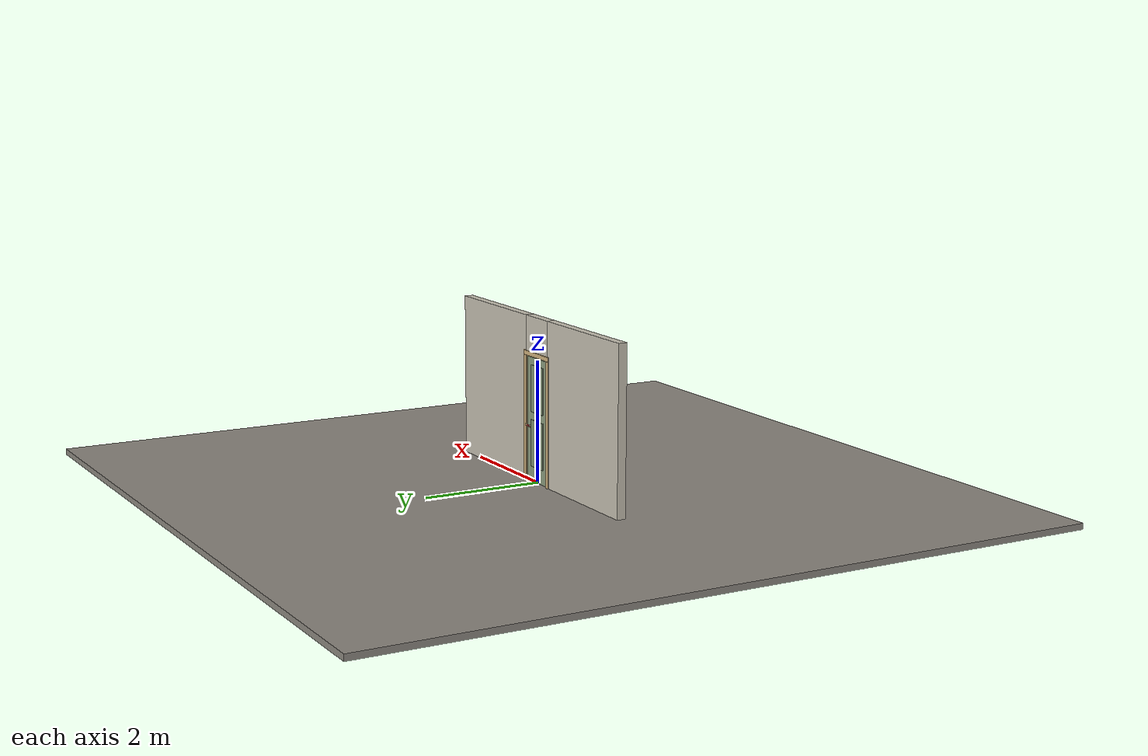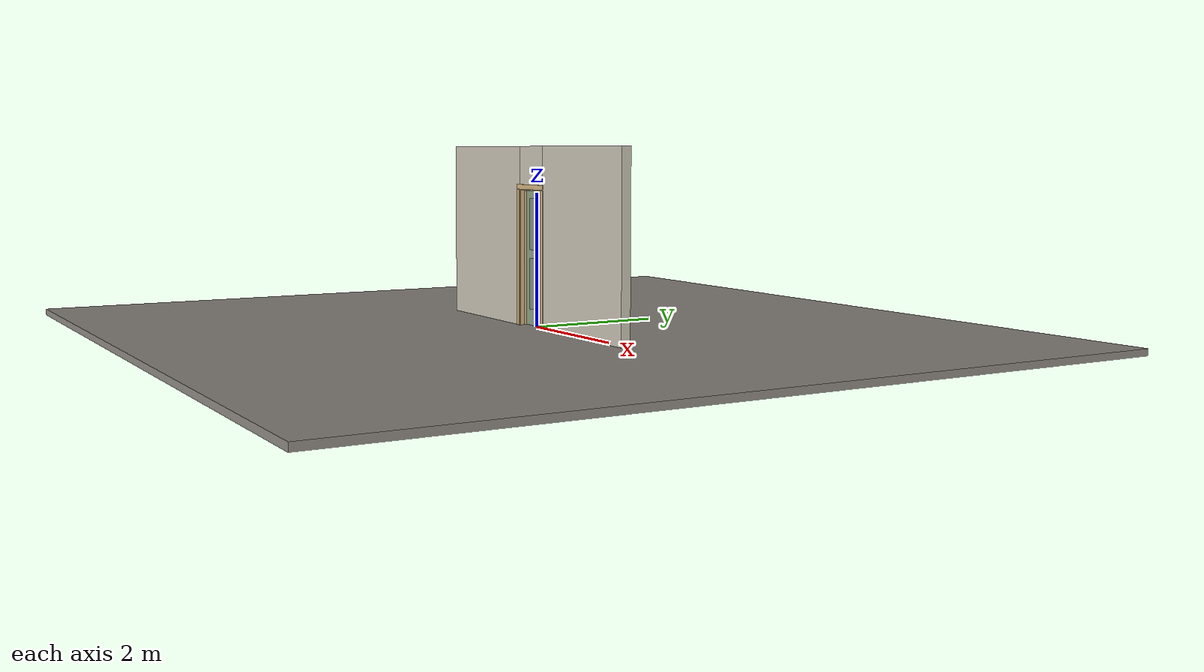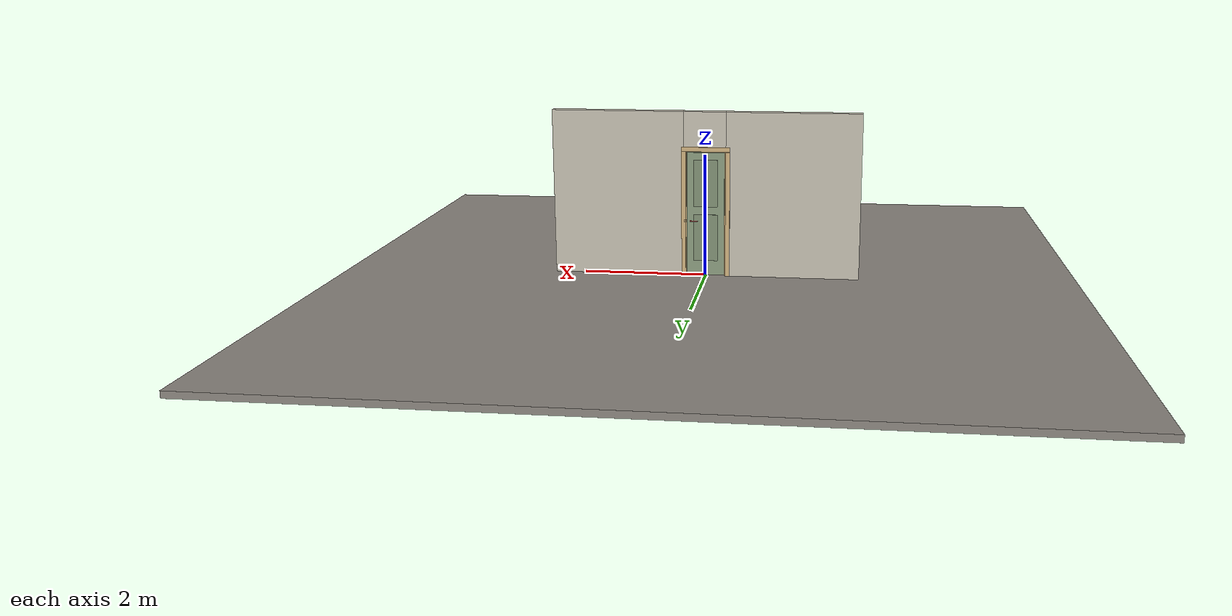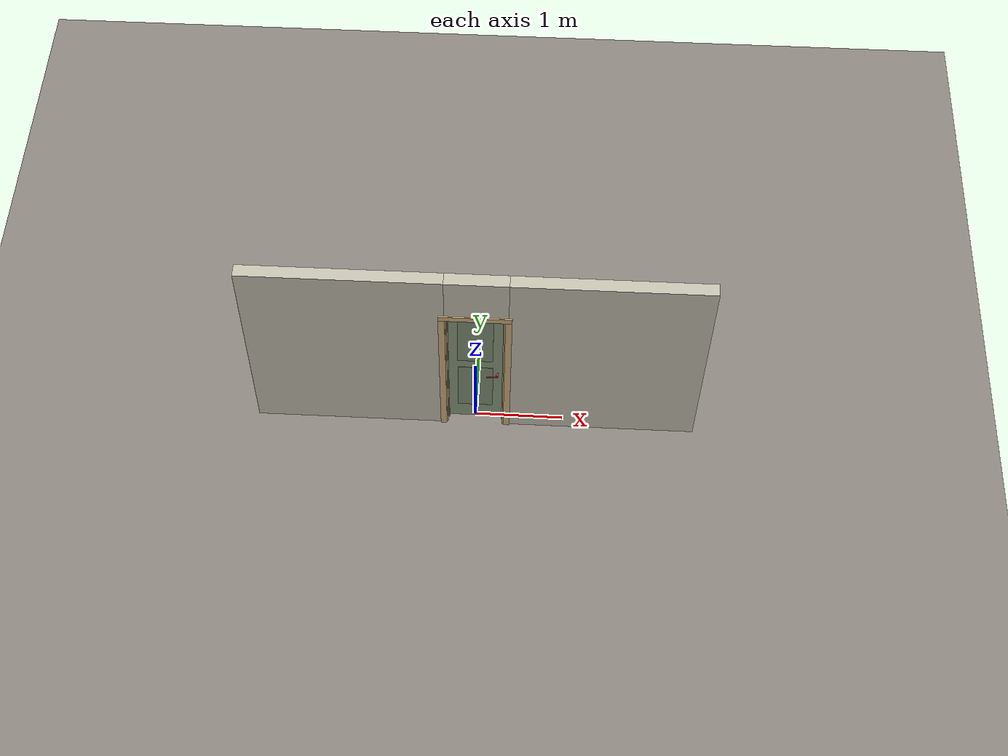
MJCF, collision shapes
<?xml version="1.0" ?>
<mujoco model="db0568_swing_single_full">
  <compiler angle="radian" meshdir="../../hardware" texturedir="../../textures" autolimits="true" inertiafromgeom="false"/>
  <option timestep="0.002" integrator="implicitfast" cone="elliptic" impratio="10" noslip_iterations="3">
    <flag multiccd="enable"/>
  </option>
  <size memory="16M"/>
  <default>
    <geom condim="4" solref="0.005 1" solimp="0.95 0.99 0.001"/>
    <joint solreflimit="0.005 1" solimplimit="0.95 0.99 0.001"/>
    <tendon solreflimit="0.005 1"/>
    <equality solref="0.002 1"/>
  </default>
  <visual>
    <headlight ambient="0.4 0.4 0.4" diffuse="0.7 0.7 0.7" specular="0.2 0.2 0.2"/>
    <quality shadowsize="4096"/>
    <map znear="0.01" zfar="60"/>
  </visual>
  <asset>
    <mesh name="hinge_e53abd72ad" file="hinge_e53abd72ad.obj"/>
    <mesh name="hinge_jamb_c17a76d68c" file="hinge_jamb_c17a76d68c.obj"/>
    <mesh name="lever_57205841c3" file="lever_57205841c3.obj"/>
    <material name="mat_floor" rgba="0.55 0.53 0.5 1" specular="0.2" shininess="0.15" reflectance="0"/>
    <material name="mat_wall" rgba="0.78 0.76 0.7 1" specular="0.2" shininess="0.1" reflectance="0"/>
    <material name="mat_leaf" rgba="0.55 0.62 0.5 1" specular="0.2" shininess="0.58" reflectance="0"/>
    <material name="mat_leaf_panel" rgba="0.506 0.57 0.46 1" specular="0.2" shininess="0.58" reflectance="0"/>
    <material name="mat_hinge" rgba="0.65 0.66 0.68 1" specular="0.74" shininess="0.5" reflectance="0.36"/>
    <material name="mat_op_black_matte_metal" rgba="0.05 0.05 0.05 1" specular="0.38" shininess="0.3" reflectance="0.12"/>
    <material name="mat_trim" rgba="0.85 0.66 0.3 1" specular="0.8" shininess="0.75" reflectance="0.4"/>
    <material name="mat_bolt" rgba="0.85 0.66 0.3 1" specular="0.8" shininess="0.75" reflectance="0.4"/>
    <material name="mat_frame" rgba="0.82 0.7 0.5 1" specular="0.2" shininess="0.45" reflectance="0"/>
    <texture name="skybox" type="skybox" builtin="gradient" rgb1="0.6 0.7 0.85" rgb2="0.9 0.92 0.95" width="256" height="256"/>
  </asset>
  <worldbody>
    <light name="sun" pos="1.5 -2.5 4" dir="-0.3 0.5 -0.8" directional="true" diffuse="0.8 0.8 0.8" specular="0.3 0.3 0.3" castshadow="true"/>
    <light name="fill" pos="-1.5 2.5 3" dir="0.3 -0.5 -0.7" directional="true" diffuse="0.35 0.35 0.4" castshadow="false"/>
    <camera name="robot_view" pos="0 -2.587687 1.734312" xyaxes="1 0 0 0 0.26963 0.962964" fovy="52"/>
    <camera name="far_view" pos="0 2.496687 1.734312" xyaxes="-1 0 0 0 -0.26963 0.962964" fovy="52"/>
    <camera name="iso" pos="1.932062 -2.180938 2.141063" xyaxes="0.741536 0.670913 0 -0.242917 0.268487 0.932151" fovy="46"/>
    <camera name="detail_handle" pos="0.328 -0.875 1.194" xyaxes="0.97561 0.219512 0 -0.070934 0.315262 0.94635" fovy="38"/>
    <geom name="floor" type="box" size="6 6 0.05" pos="0 0 -0.05" material="mat_floor" group="0" contype="1" conaffinity="1" friction="0.8 0.005 0.0001" density="2400"/>
    <geom name="wall_left" type="box" size="1.086 0.0725 1.35" pos="-1.414 -0.0455 1.35" material="mat_wall" group="0" contype="1" conaffinity="1" friction="0.6 0.005 0.0001" density="800"/>
    <geom name="wall_right" type="box" size="1.071 0.0725 1.35" pos="1.429 -0.0455 1.35" material="mat_wall" group="0" contype="1" conaffinity="1" friction="0.6 0.005 0.0001" density="800"/>
    <geom name="wall_header" type="box" size="0.343 0.0725 0.303" pos="0.015 -0.0455 2.397" material="mat_wall" group="0" contype="1" conaffinity="1" friction="0.6 0.005 0.0001" density="800"/>
    <geom name="hinge_0_jamb" type="mesh" mesh="hinge_jamb_c17a76d68c" pos="-0.306 0.027 0.259" quat="0 1 0 0" material="mat_hinge" group="1" contype="0" conaffinity="0" density="7850"/>
    <geom name="hinge_1_jamb" type="mesh" mesh="hinge_jamb_c17a76d68c" pos="-0.306 0.027 1.025" quat="0 1 0 0" material="mat_hinge" group="1" contype="0" conaffinity="0" density="7850"/>
    <geom name="hinge_2_jamb" type="mesh" mesh="hinge_jamb_c17a76d68c" pos="-0.306 0.027 1.861" quat="0 1 0 0" material="mat_hinge" group="1" contype="0" conaffinity="0" density="7850"/>
    <geom name="jamb_hinge" type="box" size="0.0095 0.0725 1.0225" pos="-0.3185 -0.0455 1.0225" material="mat_frame" group="0" contype="1" conaffinity="1" friction="0.6 0.005 0.0001" density="400"/>
    <geom name="strike_914_wall_n" type="box" size="0.0245 0.055075 0.0167" pos="0.3335 -0.062925 0.914" material="mat_frame" group="0" contype="1" conaffinity="1" friction="0.6 0.005 0.0001" density="400"/>
    <geom name="strike_914_wall_p" type="box" size="0.0245 0.008 0.0167" pos="0.3335 0.01585 0.914" material="mat_frame" group="0" contype="1" conaffinity="1" friction="0.6 0.005 0.0001" density="400"/>
    <geom name="strike_914_ramp" type="box" size="0.0245 0.01649 0.0167" pos="0.338136 0.028673 0.914" quat="0.977148 0 0 -0.212558" material="mat_frame" group="0" contype="1" conaffinity="1" friction="0.12 0.005 0.0001" density="400"/>
    <geom name="strike_914_back" type="box" size="0.01615 0.00785 0.0167" pos="0.34185 0 0.914" material="mat_frame" group="0" contype="1" conaffinity="1" friction="0.6 0.005 0.0001" density="400"/>
    <geom name="jamb_strike_0" type="box" size="0.0245 0.0725 0.44865" pos="0.3335 -0.0455 0.44865" material="mat_frame" group="0" contype="1" conaffinity="1" friction="0.6 0.005 0.0001" density="400"/>
    <geom name="jamb_strike_1" type="box" size="0.0245 0.0725 0.55715" pos="0.3335 -0.0455 1.48785" material="mat_frame" group="0" contype="1" conaffinity="1" friction="0.6 0.005 0.0001" density="400"/>
    <geom name="jamb_head" type="box" size="0.343 0.0725 0.0095" pos="0.015 -0.0455 2.0545" material="mat_frame" group="0" contype="1" conaffinity="1" friction="0.6 0.005 0.0001" density="400"/>
    <geom name="head_stud" type="box" size="0.343 0.0725 0.015" pos="0.015 -0.0455 2.079" material="mat_wall" group="0" contype="1" conaffinity="1" friction="0.6 0.005 0.0001" density="500"/>
    <geom name="stop_hinge" type="box" size="0.0055 0.016 1.0225" pos="-0.3035 -0.0365 1.0225" material="mat_frame" group="0" contype="1" conaffinity="1" friction="0.6 0.005 0.0001" density="400"/>
    <geom name="stop_strike" type="box" size="0.0055 0.016 1.0225" pos="0.3035 -0.0365 1.0225" material="mat_frame" group="0" contype="1" conaffinity="1" friction="0.6 0.005 0.0001" density="400"/>
    <geom name="stop_head" type="box" size="0.309 0.016 0.0055" pos="0 -0.0365 2.0395" material="mat_frame" group="0" contype="1" conaffinity="1" friction="0.6 0.005 0.0001" density="400"/>
    <geom name="casing_l_n" type="box" size="0.035 0.008 1.032" pos="-0.358 -0.126 1.0225" material="mat_frame" group="2" contype="0" conaffinity="0" density="400"/>
    <geom name="casing_r_n" type="box" size="0.035 0.008 1.032" pos="0.358 -0.126 1.0225" material="mat_frame" group="2" contype="0" conaffinity="0" density="400"/>
    <geom name="casing_h_n" type="box" size="0.393 0.008 0.035" pos="0 -0.126 2.094" material="mat_frame" group="2" contype="0" conaffinity="0" density="400"/>
    <geom name="casing_l_p" type="box" size="0.035 0.008 1.032" pos="-0.358 0.035 1.0225" material="mat_frame" group="2" contype="0" conaffinity="0" density="400"/>
    <geom name="casing_r_p" type="box" size="0.035 0.008 1.032" pos="0.358 0.035 1.0225" material="mat_frame" group="2" contype="0" conaffinity="0" density="400"/>
    <geom name="casing_h_p" type="box" size="0.393 0.008 0.035" pos="0 0.035 2.094" material="mat_frame" group="2" contype="0" conaffinity="0" density="400"/>
    <site name="approach_point" pos="0 -1.5 0" quat="1 0 0 0" size="0.05" rgba="0.2 0.9 0.2 0.5" group="4"/>
    <site name="goal_point" pos="0 1.5 0" quat="1 0 0 0" size="0.05" rgba="0.2 0.9 0.2 0.5" group="4"/>
    <site name="door_plane_center" pos="0 0 1.0225" quat="1 0 0 0" size="0.02" rgba="0.2 0.9 0.2 0.5" group="4"/>
    <body name="leaf" pos="-0.309 0 0">
      <inertial pos="0.304065 0.000201 1.025278" mass="33.269855" quat="0.500395 0.499433 -0.50056 0.499611" diaginertia="1.063988498 11.484684982 12.539536494"/>
      <joint name="leaf_hinge" type="hinge" axis="0 0 1" pos="0.003 0.027 0" limited="true" range="0 2.356194" damping="0.100811" frictionloss="0.441571" armature="0.02"/>
      <geom name="leaf_slab" type="box" size="0.305 0.02 1.016" pos="0.308 0 1.025" material="mat_leaf" group="0" contype="1" conaffinity="1" friction="0.4 0.005 0.0001" density="1"/>
      <geom name="leaf_panel_0_n" type="box" size="0.195 0.003 0.38422" pos="0.308 -0.023 0.63674" material="mat_leaf_panel" group="1" contype="0" conaffinity="0" density="1"/>
      <geom name="leaf_panel_0_p" type="box" size="0.195 0.003 0.38422" pos="0.308 0.023 0.63674" material="mat_leaf_panel" group="1" contype="0" conaffinity="0" density="1"/>
      <geom name="leaf_panel_1_n" type="box" size="0.195 0.003 0.38422" pos="0.308 -0.023 1.53518" material="mat_leaf_panel" group="1" contype="0" conaffinity="0" density="1"/>
      <geom name="leaf_panel_1_p" type="box" size="0.195 0.003 0.38422" pos="0.308 0.023 1.53518" material="mat_leaf_panel" group="1" contype="0" conaffinity="0" density="1"/>
      <geom name="hinge_0" type="mesh" mesh="hinge_e53abd72ad" pos="0.003 0.027 0.259" quat="0 1 0 0" material="mat_hinge" group="1" contype="0" conaffinity="0" density="7850"/>
      <geom name="hinge_1" type="mesh" mesh="hinge_e53abd72ad" pos="0.003 0.027 1.025" quat="0 1 0 0" material="mat_hinge" group="1" contype="0" conaffinity="0" density="7850"/>
      <geom name="hinge_2" type="mesh" mesh="hinge_e53abd72ad" pos="0.003 0.027 1.861" quat="0 1 0 0" material="mat_hinge" group="1" contype="0" conaffinity="0" density="7850"/>
      <geom name="leaf_latch_bolt_faceplate" type="box" size="0.0006 0.01235 0.0267" pos="0.6124 0 0.914" material="mat_bolt" group="1" contype="0" conaffinity="0" density="8500"/>
      <site name="leaf_edge_mid" pos="0.613 0 1.016" quat="1 0 0 0" size="0.02" rgba="0.2 0.9 0.2 0.5" group="4"/>
      <body name="leaf_handle" pos="0.553 0 0.914">
        <inertial pos="-0.018506 0 0" mass="0.802893" quat="0 0.707107 0.707107 0" diaginertia="0.00100521 0.002430787 0.003331452"/>
        <joint name="leaf_handle_hinge" type="hinge" axis="0 -1 0" limited="true" range="0 0.87" damping="0.212416" frictionloss="0.042" stiffness="1" springref="-0.35" armature="0.01"/>
        <geom name="leaf_handle_spindle" type="cylinder" size="0.006 0.028" pos="0 0 0" quat="0.707107 -0.707107 0 0" material="mat_op_black_matte_metal" group="1" contype="0" conaffinity="0" density="7850"/>
        <geom name="leaf_handle_lever_n" type="mesh" mesh="lever_57205841c3" pos="0 -0.02 0" quat="0.707107 0.707107 0 0" material="mat_op_black_matte_metal" group="1" contype="0" conaffinity="0" density="3000"/>
        <geom name="leaf_handle_lever_col_n" type="capsule" size="0.007 0.053" pos="-0.06 -0.075 0" quat="0.707107 0 -0.707107 0" material="mat_op_black_matte_metal" group="3" contype="1" conaffinity="1" rgba="0.8 0.3 0.3 0.25" friction="0.7 0.01 0.0001" density="3000"/>
        <geom name="leaf_handle_hub_col_n" type="cylinder" size="0.012 0.022" pos="0 -0.05 0" quat="0.707107 -0.707107 0 0" material="mat_op_black_matte_metal" group="3" contype="1" conaffinity="1" rgba="0.8 0.3 0.3 0.25" friction="0.6 0.005 0.0001" density="3000"/>
        <geom name="leaf_handle_lever_p" type="mesh" mesh="lever_57205841c3" pos="0 0.02 0" quat="-0.707107 0.707107 0 0" material="mat_op_black_matte_metal" group="1" contype="0" conaffinity="0" density="3000"/>
        <geom name="leaf_handle_lever_col_p" type="capsule" size="0.007 0.053" pos="-0.06 0.075 0" quat="0.707107 0 -0.707107 0" material="mat_op_black_matte_metal" group="3" contype="1" conaffinity="1" rgba="0.8 0.3 0.3 0.25" friction="0.7 0.01 0.0001" density="3000"/>
        <geom name="leaf_handle_hub_col_p" type="cylinder" size="0.012 0.022" pos="0 0.05 0" quat="0.707107 -0.707107 0 0" material="mat_op_black_matte_metal" group="3" contype="1" conaffinity="1" rgba="0.8 0.3 0.3 0.25" friction="0.6 0.005 0.0001" density="3000"/>
        <site name="leaf_handle_grip_n" pos="-0.096 -0.075 0" quat="1 0 0 0" size="0.012" rgba="0.2 0.9 0.2 0.5" group="4"/>
        <site name="leaf_handle_grip_p" pos="-0.096 0.075 0" quat="1 0 0 0" size="0.012" rgba="0.2 0.9 0.2 0.5" group="4"/>
      </body>
      <body name="leaf_latch_bolt" pos="0.613 0 0.914">
        <inertial pos="-0.00865 0 0" mass="0.041419" quat="0.92388 -0.382683 0 0" diaginertia="0.000000798 0.000005598 0.000005598"/>
        <joint name="leaf_latch_bolt_slide" type="slide" axis="-1 0 0" limited="true" range="0 0.0127" damping="2" frictionloss="0.3" stiffness="300" springref="-0.008333" armature="0.1"/>
        <geom name="leaf_latch_bolt_capsule" type="capsule" size="0.00635 0.015" pos="-0.00865 0 0" quat="0.707107 0 0.707107 0" material="mat_bolt" group="0" contype="1" conaffinity="1" friction="0.2 0.005 0.0001" density="8500"/>
      </body>
    </body>
  </worldbody>
  <tendon>
    <fixed name="leaf_latch_bolt_coupling" limited="true" range="0 10">
      <joint joint="leaf_latch_bolt_slide" coef="1"/>
      <joint joint="leaf_handle_hinge" coef="-0.015679"/>
    </fixed>
  </tendon>
  <sensor>
    <jointpos name="leaf_hinge_pos" joint="leaf_hinge"/>
    <jointvel name="leaf_hinge_vel" joint="leaf_hinge"/>
    <jointpos name="leaf_handle_hinge_pos" joint="leaf_handle_hinge"/>
    <jointvel name="leaf_handle_hinge_vel" joint="leaf_handle_hinge"/>
    <jointpos name="leaf_latch_bolt_slide_pos" joint="leaf_latch_bolt_slide"/>
    <jointvel name="leaf_latch_bolt_slide_vel" joint="leaf_latch_bolt_slide"/>
  </sensor>
</mujoco>
